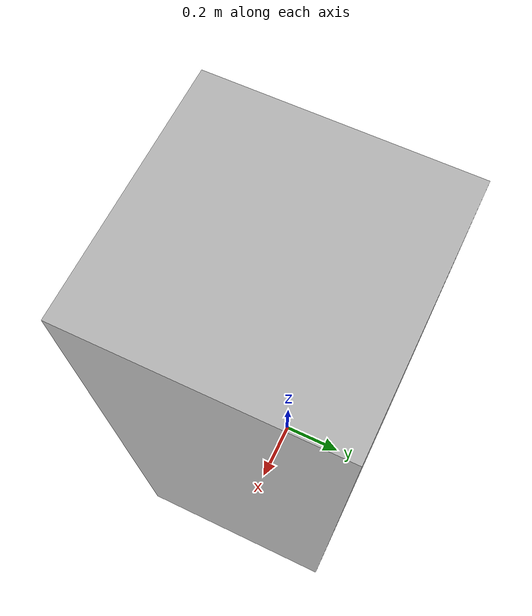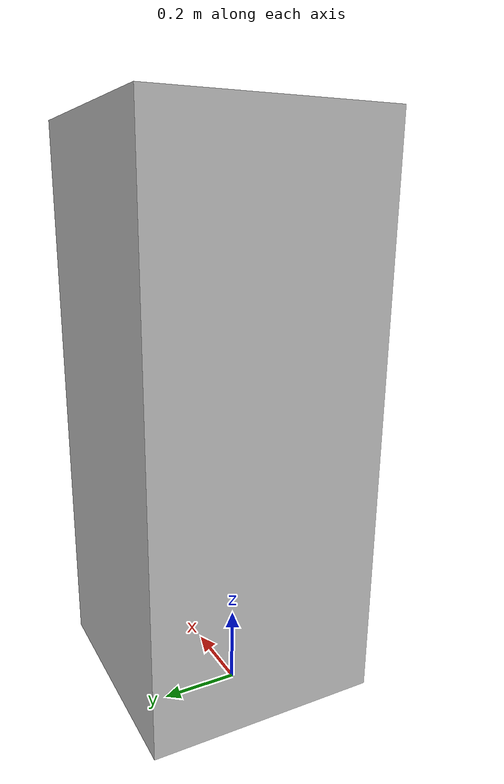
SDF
<?xml version="1.0" ?>
<sdf version='1.6'>
<world name='default'>

<model name='Measuring_Block'>
<pose>0.12 0 0 1.57 0 0</pose>

<link name='Measuring_Block'>
<pose>0 0 0 0 0 0</pose>
<collision name='Measuring_Block_collision'>
<geometry>
<mesh>
<scale>1 1 1</scale>
<uri>objFiles/Measuring_Block_collision.obj</uri>
</mesh>
</geometry>
</collision>
<visual name='Measuring_Block_visual'>
<geometry>
<mesh>
<scale>1 1 1</scale>
<uri>objFiles/Measuring_Block.obj</uri>
</mesh>
</geometry>
</visual>
<gravity>1</gravity>
<self_collide>1</self_collide>
</link>

</model>

</world>
</sdf>
